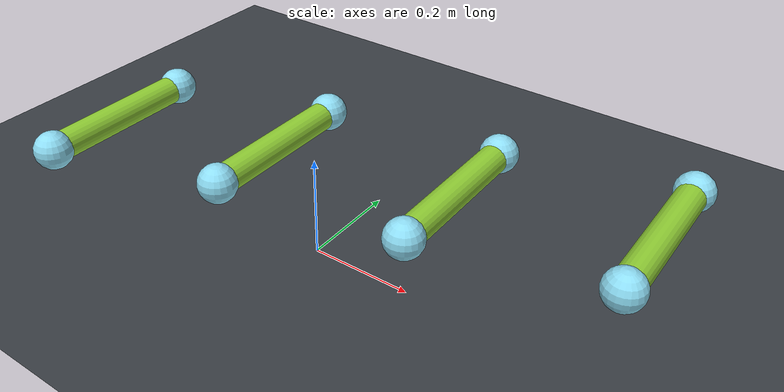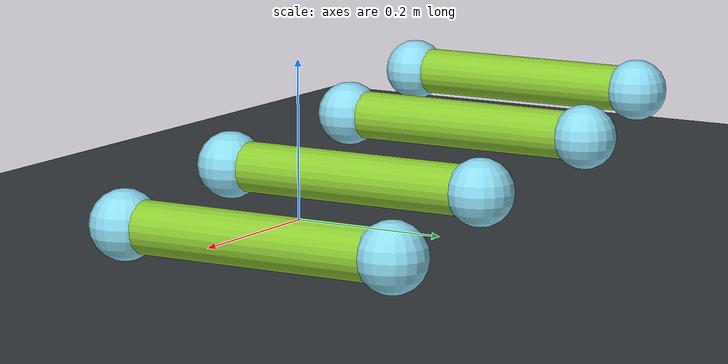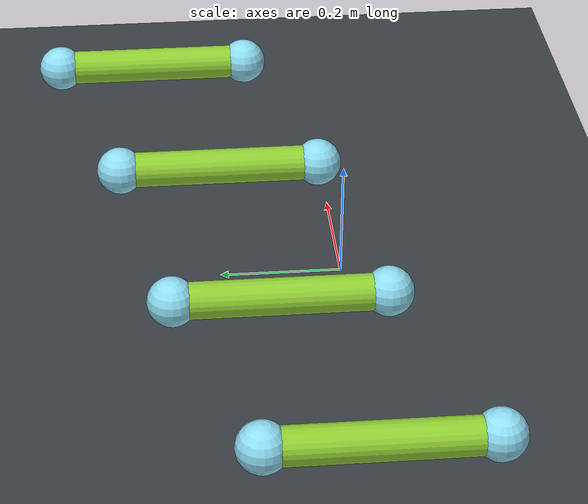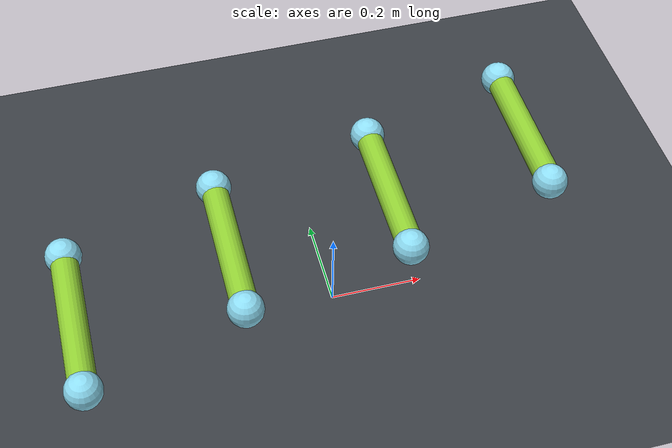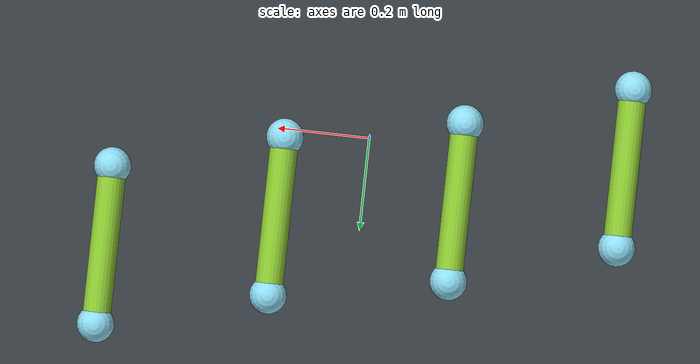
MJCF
<mujoco model="modular_assemblies_4limb">
  <compiler angle="degree"/>
  <option timestep="0.005" gravity="0 0 -9.81" iterations="60" integrator="implicitfast"/>
  <size njmax="400" nconmax="200"/>

  <default>
    <geom friction="1.0 0.08 0.02" solimp="0.95 0.99 0.001" solref="0.002 1"/>
    <site size="0.012" rgba="1 0.8 0.1 1"/>
    <equality active="false" solref="0.02 4" solimp="0.9 0.98 0.001"/>
  </default>

  <worldbody>
    <light directional="true" diffuse="0.9 0.9 0.9" specular="0.2 0.2 0.2" pos="0 2.0 1.2" dir="0 -1 -0.2"/>
    <geom name="ground" type="plane" size="4 4 0.1" rgba="0.22 0.24 0.26 1"/>

    <body name="limb0" pos="-0.55 -0.16 0.10">
      <joint type="free" damping="0.8"/>
      <geom type="cylinder" fromto="0 0 0 0 0.34 0" size="0.03" density="750" rgba="0.56 0.80 0.20 1"/>
      <geom type="sphere" pos="0 0 0" size="0.04" density="750" rgba="0.55 0.86 0.95 1"/>
      <geom type="sphere" pos="0 0.34 0" size="0.04" density="750" rgba="0.55 0.86 0.95 1"/>
      <site name="limb0_child" pos="0 0 0"/>
      <site name="limb0_parent" pos="0 0.34 0"/>
    </body>

    <body name="limb1" pos="-0.20 -0.05 0.10">
      <joint type="free" damping="0.8"/>
      <geom type="cylinder" fromto="0 0 0 0 0.34 0" size="0.03" density="750" rgba="0.56 0.80 0.20 1"/>
      <geom type="sphere" pos="0 0 0" size="0.04" density="750" rgba="0.55 0.86 0.95 1"/>
      <geom type="sphere" pos="0 0.34 0" size="0.04" density="750" rgba="0.55 0.86 0.95 1"/>
      <site name="limb1_child" pos="0 0 0"/>
      <site name="limb1_parent" pos="0 0.34 0"/>
    </body>

    <body name="limb2" pos="0.18 0.02 0.10">
      <joint type="free" damping="0.8"/>
      <geom type="cylinder" fromto="0 0 0 0 0.34 0" size="0.03" density="750" rgba="0.56 0.80 0.20 1"/>
      <geom type="sphere" pos="0 0 0" size="0.04" density="750" rgba="0.55 0.86 0.95 1"/>
      <geom type="sphere" pos="0 0.34 0" size="0.04" density="750" rgba="0.55 0.86 0.95 1"/>
      <site name="limb2_child" pos="0 0 0"/>
      <site name="limb2_parent" pos="0 0.34 0"/>
    </body>

    <body name="limb3" pos="0.54 0.12 0.10">
      <joint type="free" damping="0.8"/>
      <geom type="cylinder" fromto="0 0 0 0 0.34 0" size="0.03" density="750" rgba="0.56 0.80 0.20 1"/>
      <geom type="sphere" pos="0 0 0" size="0.04" density="750" rgba="0.55 0.86 0.95 1"/>
      <geom type="sphere" pos="0 0.34 0" size="0.04" density="750" rgba="0.55 0.86 0.95 1"/>
      <site name="limb3_child" pos="0 0 0"/>
      <site name="limb3_parent" pos="0 0.34 0"/>
    </body>
  </worldbody>

  <equality>
    <!-- Directed parent->child attach channels -->
    <connect name="conn_0_1" site1="limb0_parent" site2="limb1_child"/>
    <connect name="conn_0_2" site1="limb0_parent" site2="limb2_child"/>
    <connect name="conn_0_3" site1="limb0_parent" site2="limb3_child"/>
    <connect name="conn_1_0" site1="limb1_parent" site2="limb0_child"/>
    <connect name="conn_1_2" site1="limb1_parent" site2="limb2_child"/>
    <connect name="conn_1_3" site1="limb1_parent" site2="limb3_child"/>
    <connect name="conn_2_0" site1="limb2_parent" site2="limb0_child"/>
    <connect name="conn_2_1" site1="limb2_parent" site2="limb1_child"/>
    <connect name="conn_2_3" site1="limb2_parent" site2="limb3_child"/>
    <connect name="conn_3_0" site1="limb3_parent" site2="limb0_child"/>
    <connect name="conn_3_1" site1="limb3_parent" site2="limb1_child"/>
    <connect name="conn_3_2" site1="limb3_parent" site2="limb2_child"/>
  </equality>
</mujoco>
